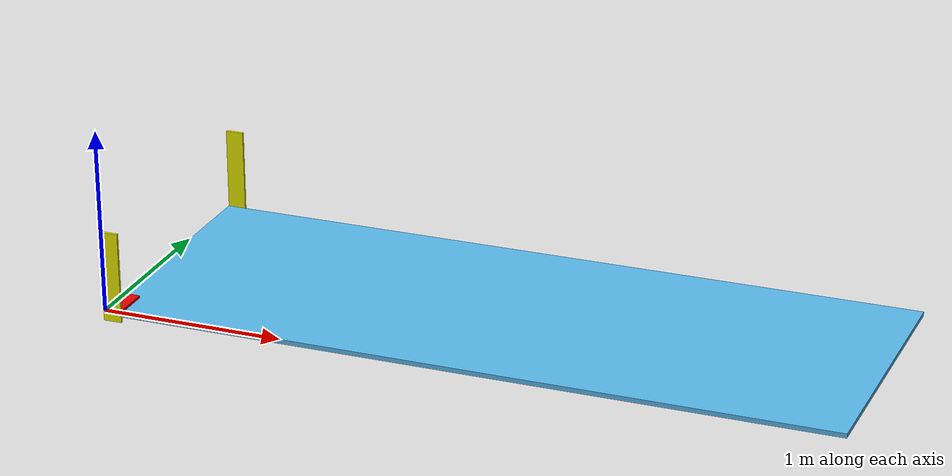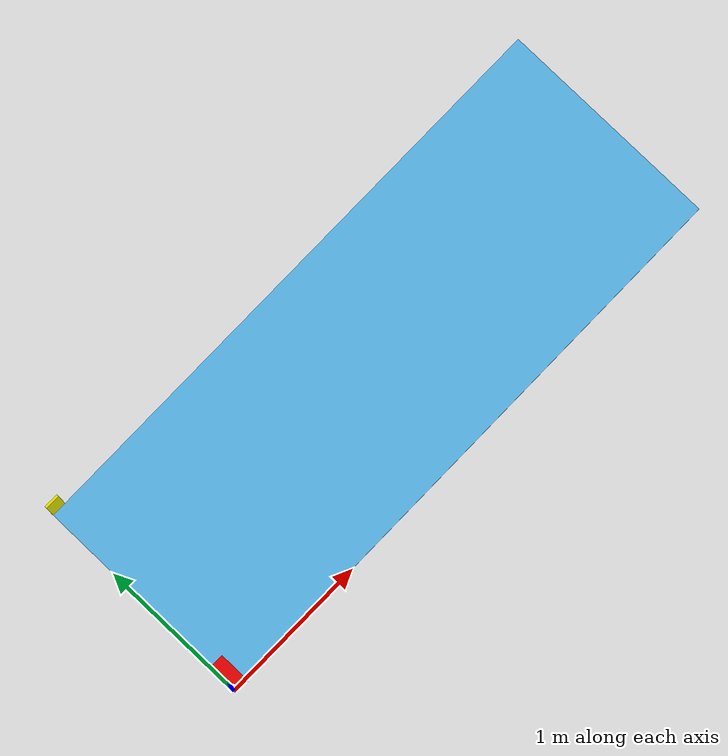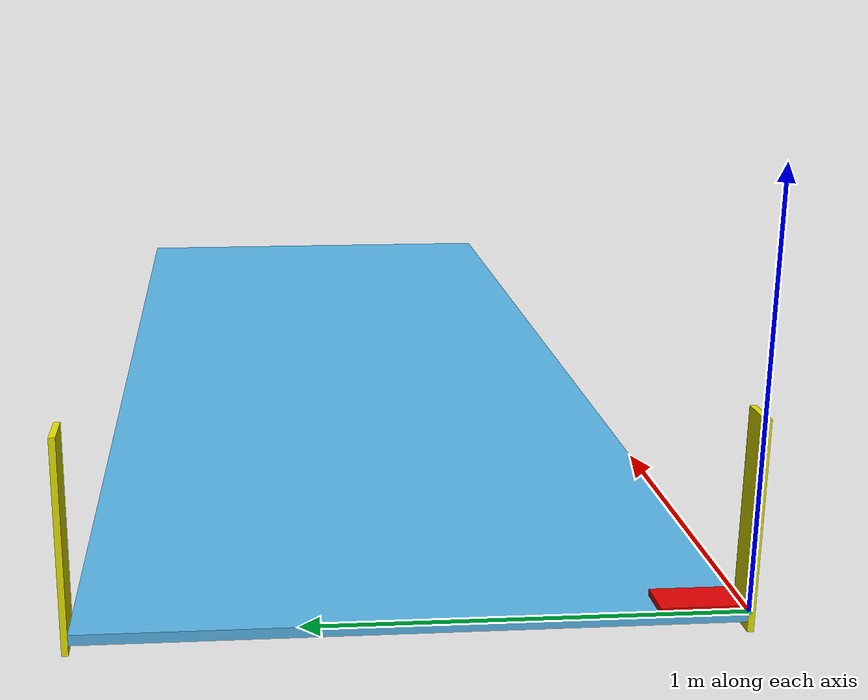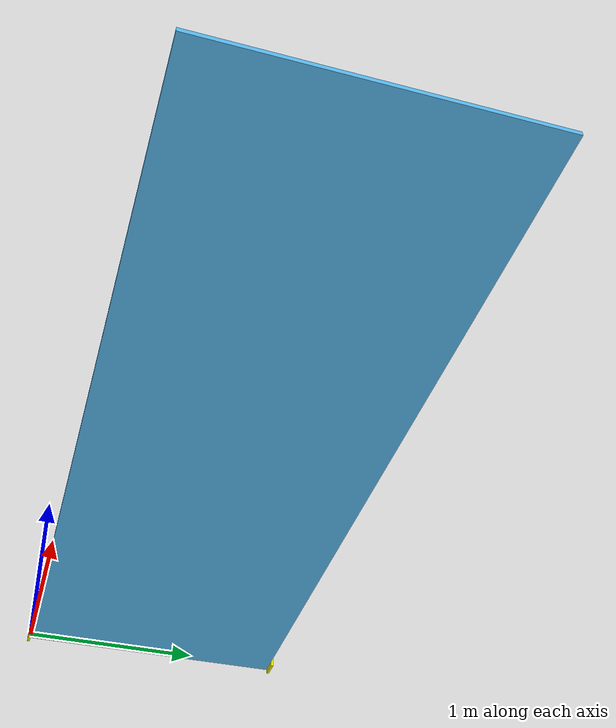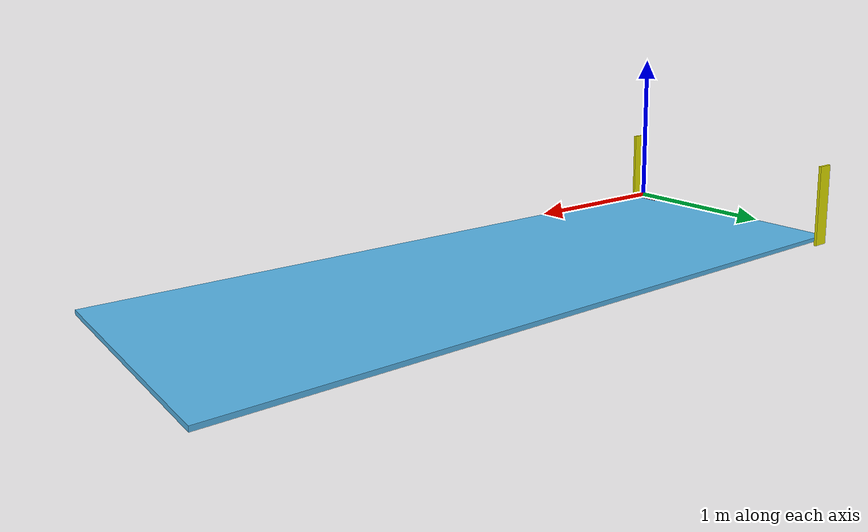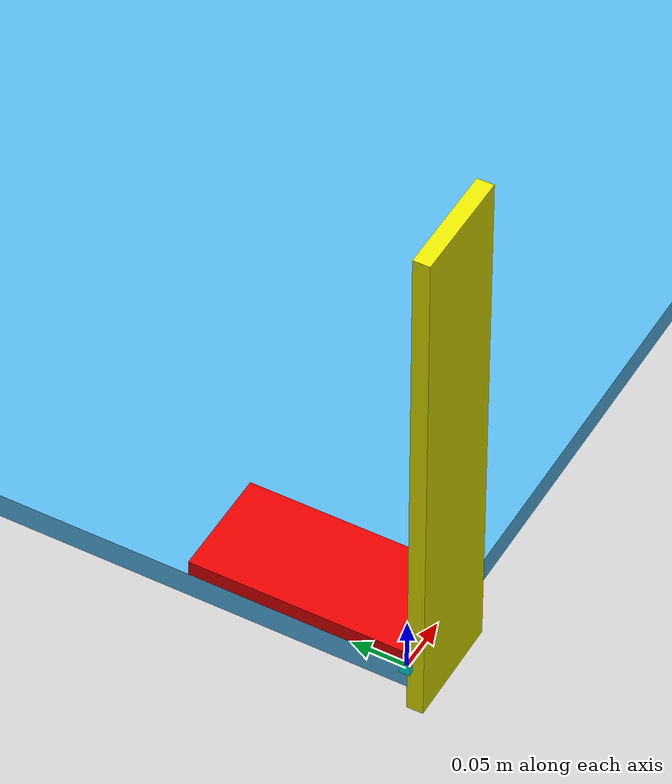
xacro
<?xml version="1.0"?>
<robot xmlns:xacro="http://www.ros.org/wiki/xacro" name="service_roboter">
    <xacro:property name="axis_length_x" value="4.0" />
    <xacro:property name="axis_length_y" value="1.5" />
    <xacro:property name="axis_length_z" value="0.6" />

    <xacro:property name="table_x" value="${axis_length_x}" />
    <xacro:property name="table_y" value="${axis_length_y}" />
    <xacro:property name="table_z" value="0.025" />

    <xacro:property name="head_x" value="0.1" />
    <xacro:property name="head_y" value="0.2" />
    <xacro:property name="head_z" value="0.015" />

    <xacro:property name="sled_x" value="0.1" />
    <xacro:property name="sled_y" value="0.015" />
    <xacro:property name="sled_z" value="0.2" />

    <link name="base_link">
        <visual>
            <origin xyz="0.0 0.0 0.0" rpy="0.0 0.0 0.0"/>
            <geometry>
                <box size="0.01 0.01 0.01"/>
            </geometry>
			<material name="Cyan">
	       		<color rgba="0 0.9 0.9 1.0"/>
	     	</material>
        </visual>
    </link>

    <link name="table_link">
        <visual>
            <origin xyz="${table_x/2} ${table_y/2} -${table_z/2}" rpy="0.0 0.0 0.0"/>
            <geometry>
                <box size="${table_x} ${table_y} ${table_z}"/>
            </geometry>
        </visual>
    </link>
    <joint name="table_joint" type="fixed">
        <parent link="base_link"/>
        <child link="table_link"/>
        <origin xyz="0.0 0.0 0.0" rpy="0.0 0.0 0.0"/>
    </joint>

    <link name="head_link">
        <visual>
            <origin xyz="${head_x/2} ${head_y/2} ${head_z/2}" rpy="0.0 0.0 0.0"/>
            <geometry>
                <box size="${head_x} ${head_y} ${head_z}"/>
            </geometry>
			<material name="Cyan">
	       		<color rgba="0.9 0.0 0.0 1.0"/>
	     	</material>
        </visual>
    </link>
    <joint name="head_joint" type="fixed">
        <parent link="head_z_link"/>
        <child link="head_link"/>
        <origin xyz="0.0 0.0 0.0" rpy="0.0 0.0 0.0"/>
    </joint>

    <link name="head_x_link">
        <visual>
            <origin xyz="0.0 0.0 0.0" rpy="0.0 0.0 0.0"/>
            <geometry>
                <box size="0.01 0.01 0.01"/>
            </geometry>
			<material name="Cyan">
	       		<color rgba="0 0.9 0.9 1.0"/>
	     	</material>
        </visual>
    </link>
    <joint name="head_x_joint" type="prismatic">
        <parent link="base_link"/>
        <child link="head_x_link"/>
        <axis xyz="1.0 0.0 0.0"/>
        <limit lower="0.0" upper="${axis_length_x - head_x}" velocity="0.5" effort="1000.0"/>
        <origin xyz="0.0 0.0 0.0" rpy="0.0 0.0 0.0"/>
    </joint>

    <link name="head_y_link">
        <visual>
            <origin xyz="0.0 0.0 0.0" rpy="0.0 0.0 0.0"/>
            <geometry>
                <box size="0.01 0.01 0.01"/>
            </geometry>
			<material name="Cyan">
	       		<color rgba="0 0.9 0.9 1.0"/>
	     	</material>
        </visual>
    </link>
    <joint name="head_y_joint" type="prismatic">
        <parent link="head_x_link"/>
        <child link="head_y_link"/>
        <axis xyz="0.0 1.0 0.0"/>
        <limit lower="0.0" upper="${axis_length_y - head_y}" velocity="0.5" effort="1000.0"/>
        <origin xyz="0.0 0.0 0.0" rpy="0.0 0.0 0.0"/>
    </joint>

    <link name="head_z_link">
        <visual>
            <origin xyz="0.0 0.0 0.0" rpy="0.0 0.0 0.0"/>
            <geometry>
                <box size="0.01 0.01 0.01"/>
            </geometry>
			<material name="Cyan">
	       		<color rgba="0 0.9 0.9 1.0"/>
	     	</material>
        </visual>
    </link>
    <joint name="head_z_joint" type="prismatic">
        <parent link="head_y_link"/>
        <child link="head_z_link"/>
        <axis xyz="0.0 0.0 1.0"/>
        <limit lower="0.0" upper="${axis_length_z}" velocity="0.5" effort="1000.0"/>
        <origin xyz="0.0 0.0 0.0" rpy="0.0 0.0 0.0"/>
    </joint>

    <link name="sled_right_link">
        <visual>
            <origin xyz="${sled_x/2} -${sled_y/2} ${-sled_z/2 + axis_length_z / 2}" rpy="0.0 0.0 0.0"/>
            <geometry>
                <box size="${sled_x} ${sled_y} ${sled_z + axis_length_z / 2}"/>
            </geometry>
			<material name="Cyan">
	       		<color rgba="0.9 0.9 0.0 1.0"/>
	     	</material>
        </visual>
    </link>
    <joint name="sled_right_joint" type="fixed">
        <parent link="head_x_link"/>
        <child link="sled_right_link"/>
        <origin xyz="0.0 0.0 0.0" rpy="0.0 0.0 0.0"/>
    </joint>

    <link name="sled_left_link">
        <visual>
            <origin xyz="${sled_x/2} ${sled_y/2 + axis_length_y} ${-sled_z/2 + axis_length_z / 2}" rpy="0.0 0.0 0.0"/>
            <geometry>
                <box size="${sled_x} ${sled_y} ${sled_z + axis_length_z / 2}"/>
            </geometry>
			<material name="Cyan">
	       		<color rgba="0.9 0.9 0.0 1.0"/>
	     	</material>
        </visual>
    </link>
    <joint name="sled_left_joint" type="fixed">
        <parent link="head_x_link"/>
        <child link="sled_left_link"/>
        <origin xyz="0.0 0.0 0.0" rpy="0.0 0.0 0.0"/>
    </joint>

</robot>
